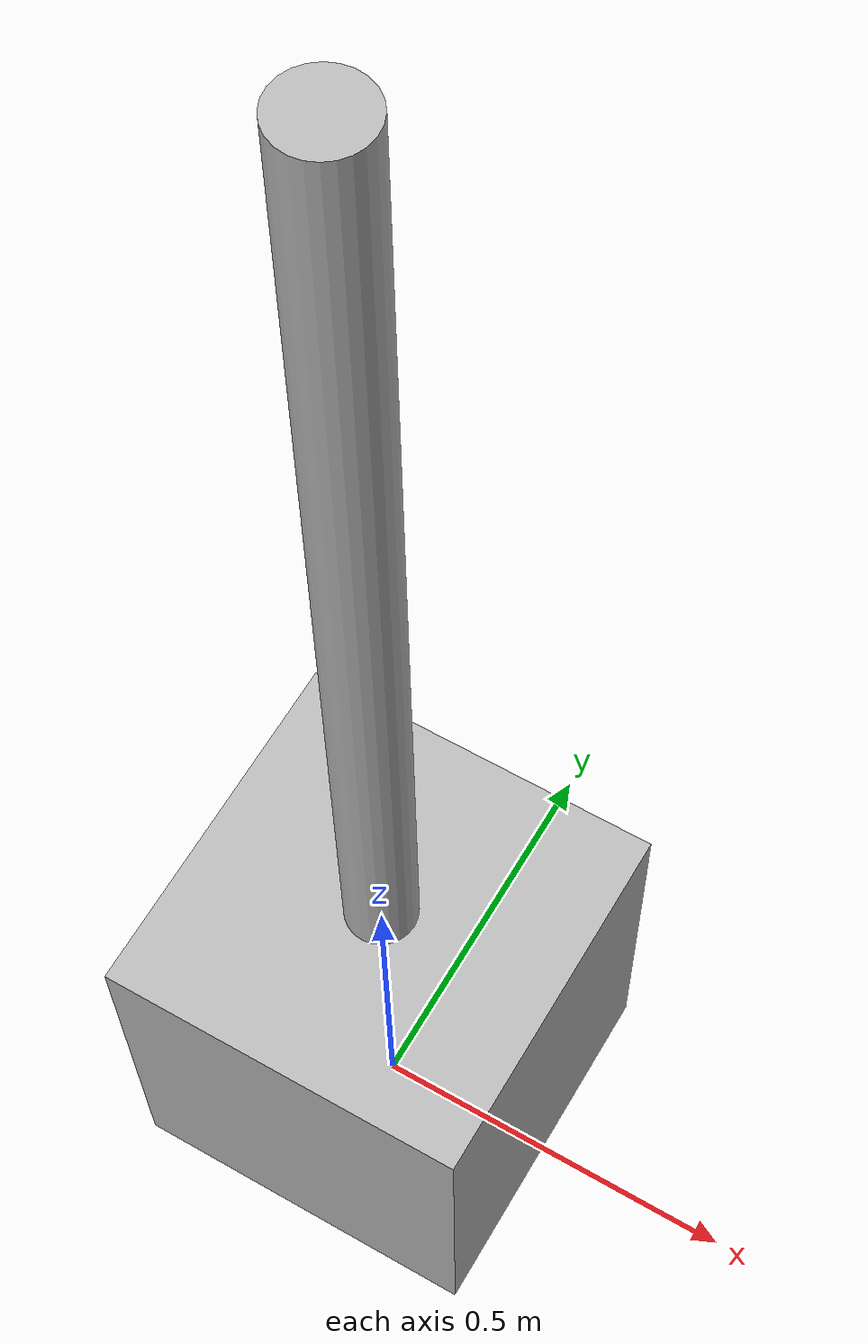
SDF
<?xml version="1.0"?>
<sdf version="1.6">
  <model name="rwc2024/coat_hanger">
    <link name="1_link">
      <collision name="1_col">
        <geometry>
          <box>
            <size>0.47 0.47 0.52</size>
          </box>
        </geometry>
      </collision>
      <visual name="1_vis">
        <geometry>
          <box>
            <size>0.47 0.47 0.52</size>
          </box>
        </geometry>
      </visual>
      <pose>0.0 0.0 0.26 0 0 0</pose>
    </link>
    <link name="2_link">
      <collision name="2_col">
        <geometry>
          <cylinder>
            <radius>0.045</radius>
            <length>1.86</length>
          </cylinder>
        </geometry>
      </collision>
      <visual name="2_vis">
        <geometry>
          <cylinder>
            <radius>0.045</radius>
            <length>1.86</length>
          </cylinder>
        </geometry>
      </visual>
      <pose>0.0 0.0 0.93 0 0 0</pose>
    </link>
  </model>
</sdf>
